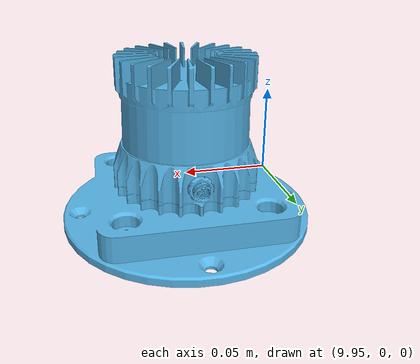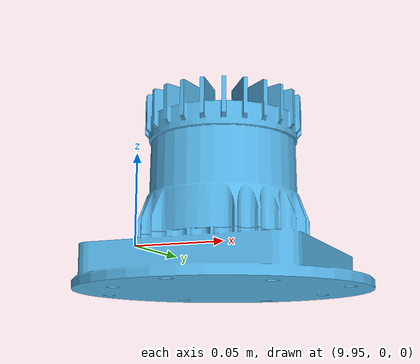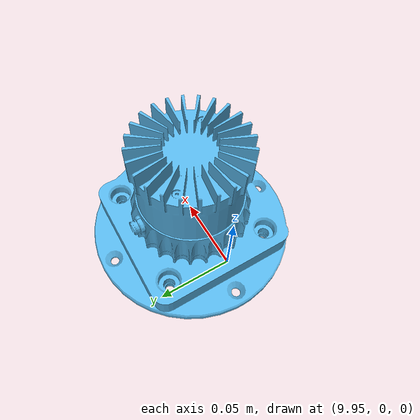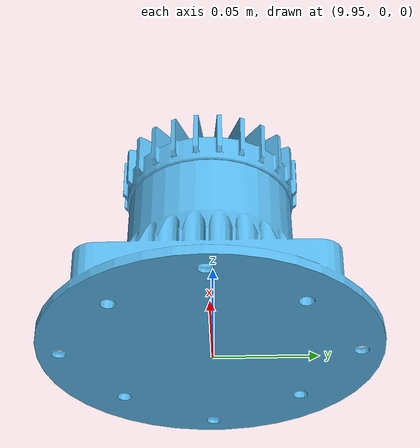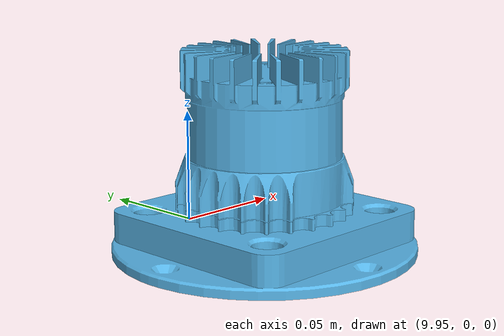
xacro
<?xml version="1.0"?>
<robot xmlns:xacro="http://www.ros.org/wiki/xacro" name="urdf_tutorial">

    <!-- COLOR -->
    <material name="white">
        <color rgba="1 1 1 1" />
    </material>

    <!-- BASE LINK -->
    <link name="world">
    </link>

    <!-- BODY LINK -->
    <joint name="body_joint" type="fixed">
        <parent link="world"/>
        <child link="laser"/>
        <origin xyz="10 0 0"/>
    </joint>

    <link name="laser">
        <visual>
          <origin xyz="0 0 0" rpy="1.5708 0 0" />
          <geometry>
            <mesh filename="file://$(find exploration_bot_description)/meshes/lidar.dae"/>
          </geometry>
        </visual>
    </link>

</robot>
